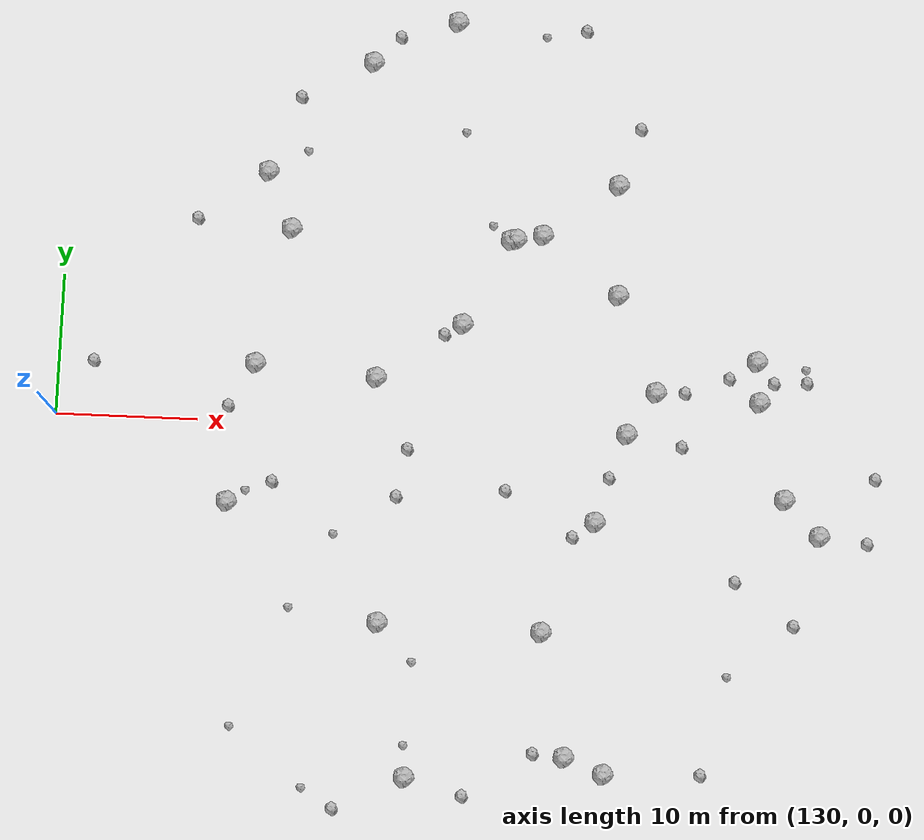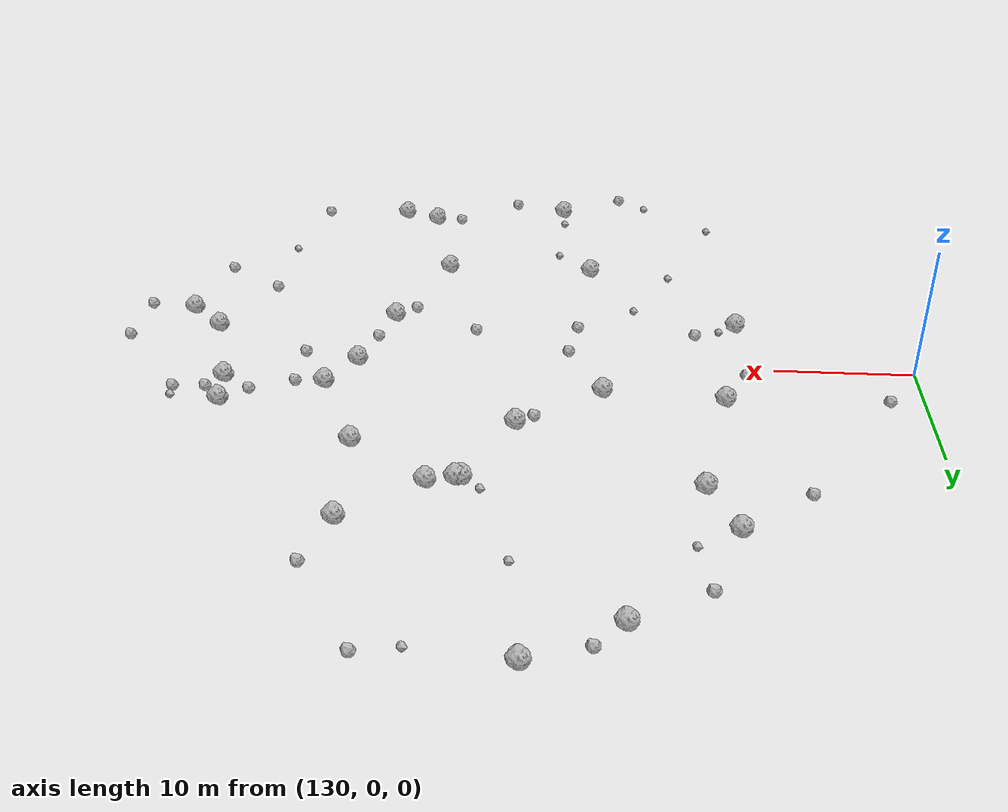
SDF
<sdf version="1.6">
 <world name="default">
  <include><uri>model://sun</uri></include>
  <model name="rock1_4_2">
   <include><uri>model://rock1</uri><pose>169.41764197278323 10.05423833432991 0.5 0 0 0</pose></include>
  </model>
  <model name="rock1_4_3">
   <include><uri>model://rock1</uri><pose>162.03890254773154 13.797463878150865 0.5 0 0 0</pose></include>
  </model>
  <model name="rock1_4_4">
   <include><uri>model://rock1</uri><pose>157.23875154796283 29.512654099363594 0.5 0 0 0</pose></include>
  </model>
  <model name="rock1_4_5">
   <include><uri>model://rock1</uri><pose>181.60543719478233 -4.070642832029591 0.5 0 0 0</pose></include>
  </model>
  <model name="rock1_4_6">
   <include><uri>model://rock1</uri><pose>184.1165278457752 -6.5623065263313265 0.5 0 0 0</pose></include>
  </model>
  <model name="rock1_4_7">
   <include><uri>model://rock1</uri><pose>172.3300962977207 3.1906654106205465 0.5 0 0 0</pose></include>
  </model>
  <model name="rock1_4_8">
   <include><uri>model://rock1</uri><pose>164.84580185225371 -14.079978331849954 0.5 0 0 0</pose></include>
  </model>
  <model name="rock1_4_9">
   <include><uri>model://rock1</uri><pose>179.66428254014625 2.782491556135504 0.5 0 0 0</pose></include>
  </model>
  <model name="rock1_4_10">
   <include><uri>model://rock1</uri><pose>169.20083094820694 18.01945306875404 0.5 0 0 0</pose></include>
  </model>
  <model name="rock1_4_11">
   <include><uri>model://rock1</uri><pose>155.71019909263043 -24.544182399577956 0.5 0 0 0</pose></include>
  </model>
  <model name="rock1_4_12">
   <include><uri>model://rock1</uri><pose>170.35687308120137 0.12804631695699698 0.5 0 0 0</pose></include>
  </model>
  <model name="rock1_4_13">
   <include><uri>model://rock1</uri><pose>168.33583331177437 -6.1909350921695605 0.5 0 0 0</pose></include>
  </model>
  <model name="rock1_4_14">
   <include><uri>model://rock1</uri><pose>144.1698804208808 18.024933697338092 0.5 0 0 0</pose></include>
  </model>
  <model name="rock1_4_15">
   <include><uri>model://rock1</uri><pose>179.399074442752 5.6897500345803635 0.5 0 0 0</pose></include>
  </model>
  <model name="rock1_4_16">
   <include><uri>model://rock1</uri><pose>161.65754295814673 13.7305366298909 0.5 0 0 0</pose></include>
  </model>
  <model name="rock1_4_17">
   <include><uri>model://rock1</uri><pose>166.74264104114204 -22.70269816704754 0.5 0 0 0</pose></include>
  </model>
  <model name="rock1_4_18">
   <include><uri>model://rock1</uri><pose>142.3865797399339 -5.777282313407127 0.5 0 0 0</pose></include>
  </model>
  <model name="rock1_4_19">
   <include><uri>model://rock1</uri><pose>143.93262310908548 4.138372015312569 0.5 0 0 0</pose></include>
  </model>
  <model name="rock1_4_20">
   <include><uri>model://rock1</uri><pose>158.47293006781146 7.5402099056494905 0.5 0 0 0</pose></include>
  </model>
  <model name="rock1_4_21">
   <include><uri>model://rock1</uri><pose>153.36647456026984 -13.869135308788312 0.5 0 0 0</pose></include>
  </model>
  <model name="rock1_4_22">
   <include><uri>model://rock1</uri><pose>152.5125005481008 3.4458700933385913 0.5 0 0 0</pose></include>
  </model>
  <model name="rock1_4_23">
   <include><uri>model://rock1</uri><pose>146.02239301687376 13.934458952995634 0.5 0 0 0</pose></include>
  </model>
  <model name="rock1_4_24">
   <include><uri>model://rock1</uri><pose>151.312455839632 26.30898520824777 0.5 0 0 0</pose></include>
  </model>
  <model name="rock1_4_25">
   <include><uri>model://rock1</uri><pose>163.92868604759087 14.18219667612432 0.5 0 0 0</pose></include>
  </model>
  <model name="rock1_4_26">
   <include><uri>model://rock1</uri><pose>169.50950087898093 -23.77118260855974 0.5 0 0 0</pose></include>
  </model>
  <model name="rock2_4_0">
   <include><uri>model://rock2</uri><pose>164.56609072902435 -22.551001561125123 0.3 0 0 0</pose></include>
  </model>
  <model name="rock2_4_1">
   <include><uri>model://rock2</uri><pose>139.3052007857933 14.438684177647566 0.3 0 0 0</pose></include>
  </model>
  <model name="rock2_4_2">
   <include><uri>model://rock2</uri><pose>177.48849441349984 4.399759500256351 0.3 0 0 0</pose></include>
  </model>
  <model name="rock2_4_3">
   <include><uri>model://rock2</uri><pose>176.27615605398955 -23.560165478433465 0.3 0 0 0</pose></include>
  </model>
  <model name="rock2_4_4">
   <include><uri>model://rock2</uri><pose>142.15743376617831 1.0366068431545585 0.3 0 0 0</pose></include>
  </model>
  <model name="rock2_4_5">
   <include><uri>model://rock2</uri><pose>174.2787254032644 -0.6105596576612058 0.3 0 0 0</pose></include>
  </model>
  <model name="rock2_4_6">
   <include><uri>model://rock2</uri><pose>187.95490588454447 -2.349573993156831 0.3 0 0 0</pose></include>
  </model>
  <model name="rock2_4_7">
   <include><uri>model://rock2</uri><pose>166.50594436574374 29.250564281512382 0.3 0 0 0</pose></include>
  </model>
  <model name="rock2_4_8">
   <include><uri>model://rock2</uri><pose>182.4694287820448 -12.930440932335966 0.3 0 0 0</pose></include>
  </model>
  <model name="rock2_4_9">
   <include><uri>model://rock2</uri><pose>174.38385745238008 3.244807318157058 0.3 0 0 0</pose></include>
  </model>
  <model name="rock2_4_10">
   <include><uri>model://rock2</uri><pose>154.2850270144176 -4.94522831757417 0.3 0 0 0</pose></include>
  </model>
  <model name="rock2_4_11">
   <include><uri>model://rock2</uri><pose>169.2211134530944 -3.018483658466259 0.3 0 0 0</pose></include>
  </model>
  <model name="rock2_4_12">
   <include><uri>model://rock2</uri><pose>187.4985343658098 -6.931301937541193 0.3 0 0 0</pose></include>
  </model>
  <model name="rock2_4_13">
   <include><uri>model://rock2</uri><pose>157.20798748147456 6.755157600084637 0.3 0 0 0</pose></include>
  </model>
  <model name="rock2_4_14">
   <include><uri>model://rock2</uri><pose>145.49925904932576 -4.236827791345764 0.3 0 0 0</pose></include>
  </model>
  <model name="rock2_4_15">
   <include><uri>model://rock2</uri><pose>180.65540345464066 4.193742511252424 0.3 0 0 0</pose></include>
  </model>
  <model name="rock2_4_16">
   <include><uri>model://rock2</uri><pose>132.4835473044352 3.8733849568846495 0.3 0 0 0</pose></include>
  </model>
  <model name="rock2_4_17">
   <include><uri>model://rock2</uri><pose>150.79132683392805 -26.904033693484223 0.3 0 0 0</pose></include>
  </model>
  <model name="rock2_4_18">
   <include><uri>model://rock2</uri><pose>166.7859317621722 -7.312257184598451 0.3 0 0 0</pose></include>
  </model>
  <model name="rock2_4_19">
   <include><uri>model://rock2</uri><pose>170.64060314335535 22.204908612746983 0.3 0 0 0</pose></include>
  </model>
  <model name="rock2_4_20">
   <include><uri>model://rock2</uri><pose>154.93680624388062 -1.5424221936906974 0.3 0 0 0</pose></include>
  </model>
  <model name="rock2_4_21">
   <include><uri>model://rock2</uri><pose>146.24695350884116 23.57440471027862 0.3 0 0 0</pose></include>
  </model>
  <model name="rock2_4_22">
   <include><uri>model://rock2</uri><pose>161.95399480851833 -4.2208001191258475 0.3 0 0 0</pose></include>
  </model>
  <model name="rock2_4_23">
   <include><uri>model://rock2</uri><pose>182.98702516293315 4.316960413393609 0.3 0 0 0</pose></include>
  </model>
  <model name="rock2_4_24">
   <include><uri>model://rock2</uri><pose>159.77306721800662 -25.67728155455964 0.3 0 0 0</pose></include>
  </model>
  <model name="rock2_4_25">
   <include><uri>model://rock2</uri><pose>178.28341668105838 -10.013857812118182 0.3 0 0 0</pose></include>
  </model>
  <model name="rock2_4_26">
   <include><uri>model://rock2</uri><pose>153.18653873528447 28.266345925745767 0.3 0 0 0</pose></include>
  </model>
  <model name="rock3_4_0">
   <include><uri>model://rock3</uri><pose>146.89812685144747 19.630269233021224 0.2 0 0 0</pose></include>
  </model>
  <model name="rock3_4_1">
   <include><uri>model://rock3</uri><pose>182.87600978392618 5.244510106480412 0.2 0 0 0</pose></include>
  </model>
  <model name="rock3_4_2">
   <include><uri>model://rock3</uri><pose>143.61990728619534 -4.9424122808153435 0.2 0 0 0</pose></include>
  </model>
  <model name="rock3_4_3">
   <include><uri>model://rock3</uri><pose>160.3311153170728 14.736470258946305 0.2 0 0 0</pose></include>
  </model>
  <model name="rock3_4_4">
   <include><uri>model://rock3</uri><pose>158.14109075984817 21.468175021930733 0.2 0 0 0</pose></include>
  </model>
  <model name="rock3_4_5">
   <include><uri>model://rock3</uri><pose>149.9494330535658 -7.778973925306072 0.2 0 0 0</pose></include>
  </model>
  <model name="rock3_4_6">
   <include><uri>model://rock3</uri><pose>163.62262081138908 28.692014834077 0.2 0 0 0</pose></include>
  </model>
  <model name="rock3_4_7">
   <include><uri>model://rock3</uri><pose>155.85256956978952 -16.541798923672776 0.2 0 0 0</pose></include>
  </model>
  <model name="rock3_4_8">
   <include><uri>model://rock3</uri><pose>177.89598095513173 -16.681741525543156 0.2 0 0 0</pose></include>
  </model>
  <model name="rock3_4_9">
   <include><uri>model://rock3</uri><pose>148.55739295344796 -25.568203216442747 0.2 0 0 0</pose></include>
  </model>
  <model name="rock3_4_10">
   <include><uri>model://rock3</uri><pose>143.34430573832807 -21.524111102369652 0.2 0 0 0</pose></include>
  </model>
  <model name="rock3_4_11">
   <include><uri>model://rock3</uri><pose>147.04827989422856 -13.070994728269007 0.2 0 0 0</pose></include>
  </model>
  <model name="rock3_4_12">
   <include><uri>model://rock3</uri><pose>155.5209890509667 -22.36061551502098 0.2 0 0 0</pose></include>
  </model>
 </world>
</sdf>
